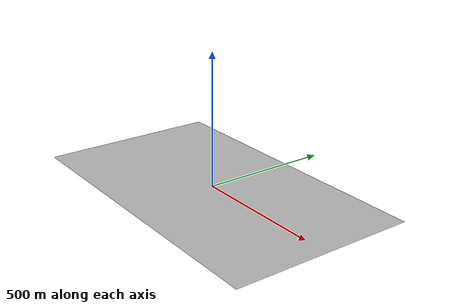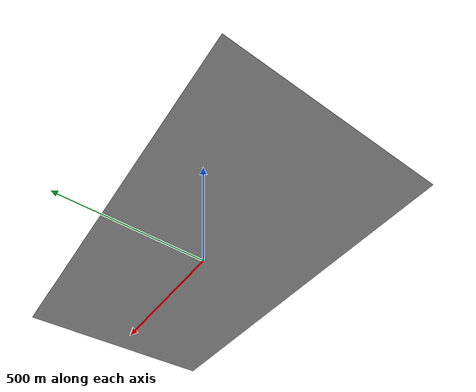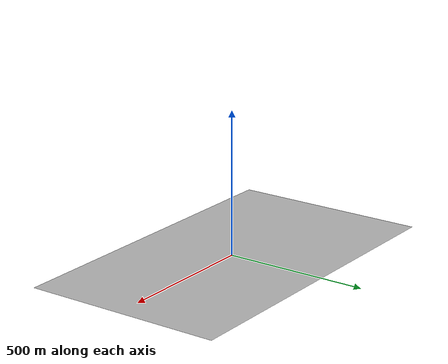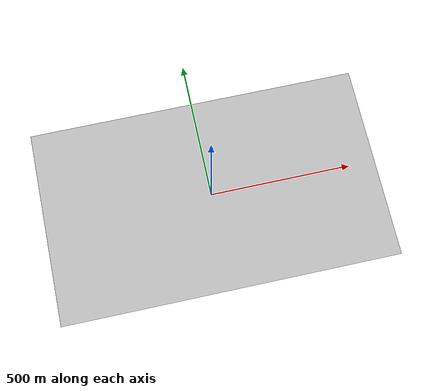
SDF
<?xml version="1.0" ?>
<sdf version="1.6">
  <model name="windsor_terrain">
    <static>true</static>
    <link name="link">
      <collision name="collision">
	      <pose>0 0 0 0 0 0</pose>
        <geometry>
          <mesh>
  	        <scale>1 1 1</scale>
            <uri>model://windsor_terrain/meshes/windsor_terrain.dae</uri>
          </mesh>
        </geometry>
        <surface>
          <friction>
            <ode>
              <mu>1.0</mu>
              <mu2>1.0</mu2>
            </ode>
          </friction>
        </surface>
      </collision>
      <visual name="visual">
	    <pose>0 0 0 0 0 0</pose>
        <geometry>
          <mesh>
  	      <scale>1 1 1</scale>
            <uri>model://windsor_terrain/meshes/windsor_terrain.dae</uri>
          </mesh>
        </geometry>
      </visual>
    </link>
  </model>

</sdf>
